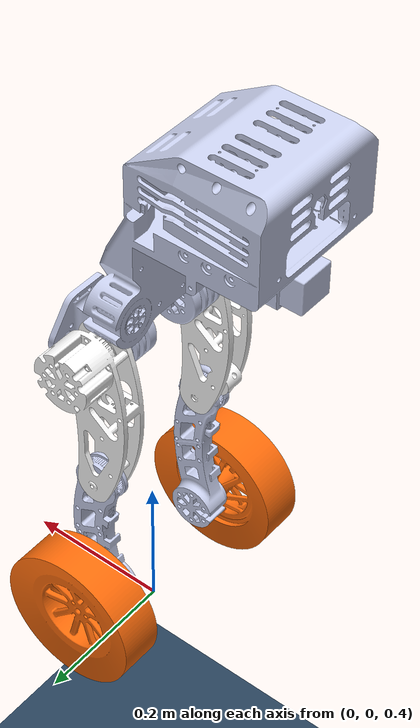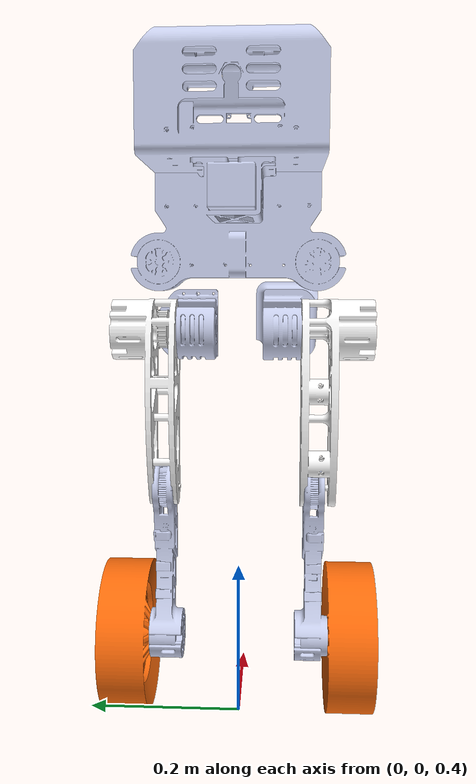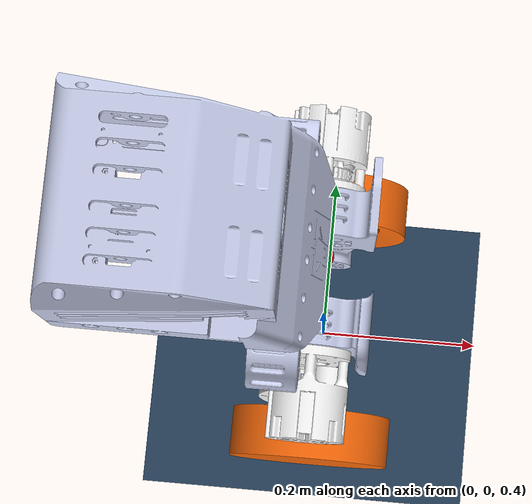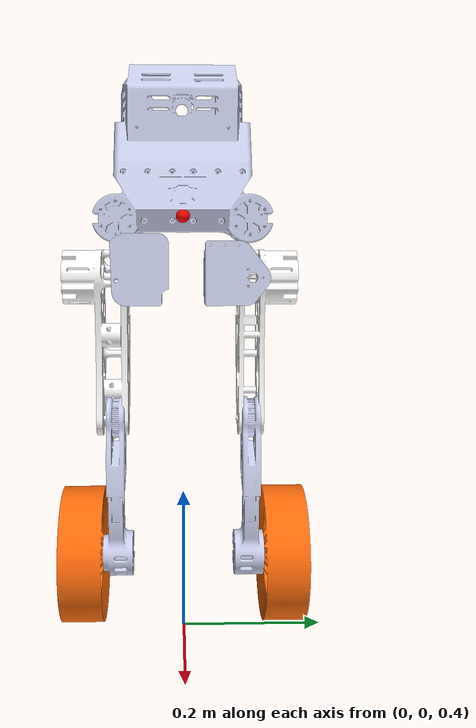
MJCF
<mujoco model="GOAT_Fixed">
    <compiler angle="radian" coordinate="local" meshdir="../meshes/" autolimits="true"/>

    <option timestep="0.005" gravity="0 0 -9.81" integrator="implicit" solver="Newton" iterations="32"/>

    <visual>
        <headlight diffuse="0.6 0.6 0.6" ambient="0.3 0.3 0.3" specular="0 0 0"/>
        <rgba haze="0.15 0.25 0.35 1"/>
        <global azimuth="120" elevation="-20"/>
    </visual>

    <asset>
        <texture  name="groundplane" type="2d" builtin="checker" mark="edge" rgb1="0.2 0.3 0.4" rgb2="0.1 0.2 0.3" markrgb="0.8 0.8 0.8" width="512" height="512"/>
        <material name="groundplane" texture="groundplane" texuniform="true" texrepeat="5 5" reflectance="0.2"/>
    </asset>

    <worldbody>
        <light directional="true" diffuse=".8 .8 .8" specular=".2 .2 .2" pos="0 0 5" dir="0 0 -1"/>
        <geom name="floor" type="plane" size="0 0 1" material="groundplane"/>
    </worldbody>

    <asset>
        <mesh name="base_Link" file="base_Link_simple.stl"/>
        <mesh name="hip_L_Link" file="hip_L_Link.stl"/>
        <mesh name="hip_R_Link" file="hip_R_Link.stl"/>
        <mesh name="thigh_L_Link" file="thigh_L_Link.stl"/>
        <mesh name="thigh_R_Link" file="thigh_R_Link.stl"/>
        <mesh name="calf_L_Link" file="calf_L_Link.stl"/>
        <mesh name="calf_R_Link" file="calf_R_Link.stl"/>
        <mesh name="wheel_L_Link" file="BF_wheel_L_Link.stl"/>
        <mesh name="wheel_R_Link" file="BF_wheel_R_Link.stl"/>

        <material name="orange" rgba="1.0 0.423 0.039 1.0"/>
        <material name="black" rgba="0.792 0.819 0.933 1.0"/>
        <material name="white" rgba="1.0 1.0 1.0 1.0"/>
    </asset>

    <default>
        <joint damping="0.0" frictionloss="0.0"/>
        <geom contype="1" conaffinity="1" friction="0.65 0.1 0.1"/>
        <motor ctrllimited="true"/>
    </default>

     <worldbody>
        <body name="base_Link" pos="0 0 1.0">
            <!-- Fixed base -->
            <site name="imu_site" pos="0 0 0" size="0.01" type="sphere" rgba="1 0 0 1"/>

            <inertial pos="0 0 0" mass="3.153308" fullinertia="0.021860000 0.025170000 0.023520000 -0.000011699458 0.006702000 0.000004493943"/>
            <geom type="mesh" mesh="base_Link" material="black" pos="-0.112941 0 0.084350" contype="0" conaffinity="0" group="1"/>
            <geom type="box" size="0.107 0.100 0.095" pos="-0.011 0 0.056" group="3"/>
            <geom type="box" size="0.035 0.125 0.040" pos="0.07 0 -0.078" group="3"/>

            <body name="hip_L_Link" pos="0.049579 0.096336 -0.087088">
                <joint name="hip_L_Joint" type="hinge" axis="-1 0 0" range="-1.7453 1.0123" damping="0.0" frictionloss="0.0" armature="0.001"/>
                <inertial pos="-0.043122 -0.038397 0.000190" mass="0.319" fullinertia="0.000146600 0.000204200 0.000181800 -0.000011403300 -0.000006278833 -0.000000904927"/>
                <geom type="mesh" mesh="hip_L_Link" material="black" contype="0" conaffinity="0" group="1"/>
                <geom type="cylinder" size="0.042 0.0675" pos="-0.0535 0 0" euler="1.57 0 0" group="3"/>

                <body name="thigh_L_Link" pos="-0.054 -0.017 0">
                    <joint name="thigh_L_Joint" type="hinge" axis="0 1 0" range="-0.3840 2.0071" damping="0.0" frictionloss="0.0" armature="0.001"/>
                    <inertial pos="-0.002015 0.042352 -0.035272" mass="0.483216" fullinertia="0.002425000 0.002342000 0.000385000 -0.000020797926 -0.000075779875 -0.000378300"/>
                    <geom type="mesh" mesh="thigh_L_Link" material="white" contype="0" conaffinity="0" group="1"/>
                    <geom type="box" size="0.045 0.025 0.0725" pos="-0.011 0.016 -0.116" group="3"/>

                    <body name="calf_L_Link" pos="0 0.018 -0.205">
                        <joint name="knee_L_Joint" type="hinge" axis="0 -1 0" range="-0.523599 2.3387" damping="0.0" frictionloss="0.0" armature="0.001"/>
                        <inertial pos="0.001969 0.000712 -0.160161" mass="0.303" fullinertia="0.001598000 0.001638000 0.000095365219 0.000000705710 -0.000031199137 0.000006440235"/>
                        <geom type="mesh" mesh="calf_L_Link" material="black" contype="0" conaffinity="0" group="1"/>
                        <geom type="cylinder" size="0.0325 0.1165" pos="0 0 -0.116" group="3"/>

                        <body name="wheel_L_Link" pos="0 0.016555 -0.200">
                            <joint name="wheel_L_Joint" type="hinge" axis="0 1 0" damping="0.0" frictionloss="0.0" armature="0.001"/>
                            <inertial pos="0 0.030660 0" mass="0.985" fullinertia="0.003366000 0.006306000 0.003366000 0 0 0"/>
                            <geom type="mesh" mesh="wheel_L_Link" material="orange" contype="0" conaffinity="0" group="1"/>
                            <geom name="wheel_L_collision" type="cylinder" size="0.1 0.025" pos="0 0.03 0" euler="1.5707963267948966 0 0" group="3"/>
                        </body>
                    </body>
                </body>
            </body>

            <body name="hip_R_Link" pos="0.049579 -0.096336 -0.087088">
                <joint name="hip_R_Joint" type="hinge" axis="-1 0 0" range="-1.0123 1.7453" damping="0.0" frictionloss="0.0" armature="0.001"/>
                <inertial pos="-0.043122 0.038397 0.000190" mass="0.319" fullinertia="0.000146600 0.000204200 0.000181800 0.000011403300 -0.000006278833 0.000000904927"/>
                <geom type="mesh" mesh="hip_R_Link" material="black" contype="0" conaffinity="0" group="1"/>
                <geom type="cylinder" size="0.042 0.0675" pos="-0.0535 0 0" euler="1.57 0 0" group="3"/>

                <body name="thigh_R_Link" pos="-0.054 0.017 0">
                    <joint name="thigh_R_Joint" type="hinge" axis="0 -1 0" range="-2.0071 0.3840" damping="0.0" frictionloss="0.0" armature="0.001"/>
                    <inertial pos="-0.002015 -0.042352 -0.035272" mass="0.483216" fullinertia="0.002425000 0.002342000 0.000385000 0.000020797926 -0.000075779875 0.000378300"/>
                    <geom type="mesh" mesh="thigh_R_Link" material="white" contype="0" conaffinity="0" group="1"/>
                    <geom type="box" size="0.045 0.025 0.0725" pos="-0.011 -0.016 -0.116" group="3"/>

                    <body name="calf_R_Link" pos="0 -0.018 -0.205">
                        <joint name="knee_R_Joint" type="hinge" axis="0 1 0" range="-2.3387 0.523599" damping="0.0" frictionloss="0.0" armature="0.001"/>
                        <inertial pos="0.001969 -0.000712 -0.160161" mass="0.303" fullinertia="0.001598000 0.001638000 0.000095365219 -0.000000705710 -0.000031199137 -0.000006440235"/>
                        <geom type="mesh" mesh="calf_R_Link" material="black" contype="0" conaffinity="0" group="1"/>
                        <geom type="cylinder" size="0.0325 0.1165" pos="0 0 -0.116" group="3"/>

                        <body name="wheel_R_Link" pos="0 -0.016555 -0.200">
                            <joint name="wheel_R_Joint" type="hinge" axis="0 -1 0" damping="0.0" frictionloss="0.0" armature="0.001"/>
                            <inertial pos="0 -0.030660 0" mass="0.985" fullinertia="0.003366000 0.006306000 0.003366000 0 0 0"/>
                            <geom type="mesh" mesh="wheel_R_Link" material="orange" contype="0" conaffinity="0" group="1"/>
                            <geom name="wheel_R_collision" type="cylinder" size="0.1 0.025" pos="0 -0.03 0" euler="1.5707963267948966 0 0" group="3"/>
                        </body>
                    </body>
                </body>
            </body>
        </body>
    </worldbody>

    <!-- Wheel-ground friction controlled explicitly via contact pairs. -->
    <contact>
        <exclude body1="base_Link"    body2="hip_L_Link"/>
        <exclude body1="base_Link"    body2="hip_R_Link"/>
        <exclude body1="base_Link"    body2="thigh_L_Link"/>
        <exclude body1="base_Link"    body2="thigh_R_Link"/>
        <exclude body1="base_Link"    body2="calf_L_Link"/>
        <exclude body1="base_Link"    body2="calf_R_Link"/>
        <exclude body1="base_Link"    body2="wheel_L_Link"/>
        <exclude body1="base_Link"    body2="wheel_R_Link"/>
        <exclude body1="hip_L_Link"   body2="hip_R_Link"/>
        <exclude body1="hip_L_Link"   body2="thigh_R_Link"/>
        <exclude body1="hip_L_Link"   body2="calf_L_Link"/>
        <exclude body1="hip_L_Link"   body2="calf_R_Link"/>
        <exclude body1="hip_L_Link"   body2="wheel_L_Link"/>
        <exclude body1="hip_L_Link"   body2="wheel_R_Link"/>
        <exclude body1="hip_R_Link"   body2="thigh_L_Link"/>
        <exclude body1="hip_R_Link"   body2="calf_L_Link"/>
        <exclude body1="hip_R_Link"   body2="calf_R_Link"/>
        <exclude body1="hip_R_Link"   body2="wheel_L_Link"/>
        <exclude body1="hip_R_Link"   body2="wheel_R_Link"/>
        <exclude body1="thigh_L_Link" body2="thigh_R_Link"/>
        <exclude body1="thigh_L_Link" body2="calf_R_Link"/>
        <exclude body1="thigh_L_Link" body2="wheel_L_Link"/>
        <exclude body1="thigh_L_Link" body2="wheel_R_Link"/>
        <exclude body1="thigh_R_Link" body2="calf_L_Link"/>
        <exclude body1="thigh_R_Link" body2="wheel_L_Link"/>
        <exclude body1="thigh_R_Link" body2="wheel_R_Link"/>
        <exclude body1="calf_L_Link"  body2="calf_R_Link"/>
        <exclude body1="calf_L_Link"  body2="wheel_R_Link"/>
        <exclude body1="calf_R_Link"  body2="wheel_L_Link"/>
        <exclude body1="wheel_L_Link" body2="wheel_R_Link"/>
    </contact>

    <contact>
        <pair name="floor_wheel_L"
            geom1="floor"
            geom2="wheel_L_collision"
            condim="3"
            friction="1.0 1.0 0.0 0.0 0.0"
            solref="0.02 1.0"
            solimp="0.9 0.95 0.001 0.5 2"/>

        <pair name="floor_wheel_R"
            geom1="floor"
            geom2="wheel_R_collision"
            condim="3"
            friction="1.0 1.0 0.0 0.0 0.0"
            solref="0.02 1.0"
            solimp="0.9 0.95 0.001 0.5 2"/>
    </contact>

    <actuator>
        <motor name="hip_L_Joint"   joint="hip_L_Joint"   ctrllimited="true" ctrlrange="-4.5 4.5"  forcelimited="true" forcerange="-4.5 4.5"/>
        <motor name="thigh_L_Joint" joint="thigh_L_Joint" ctrllimited="true" ctrlrange="-4.5 4.5"  forcelimited="true" forcerange="-4.5 4.5"/>
        <motor name="knee_L_Joint"  joint="knee_L_Joint"  ctrllimited="true" ctrlrange="-9.0 9.0"  forcelimited="true" forcerange="-9.0 9.0"/>
        <motor name="wheel_L_Joint" joint="wheel_L_Joint" ctrllimited="true" ctrlrange="-2.5 2.5"  forcelimited="true" forcerange="-2.5 2.5"/>
        <motor name="hip_R_Joint"   joint="hip_R_Joint"   ctrllimited="true" ctrlrange="-4.5 4.5"  forcelimited="true" forcerange="-4.5 4.5"/>
        <motor name="thigh_R_Joint" joint="thigh_R_Joint" ctrllimited="true" ctrlrange="-4.5 4.5"  forcelimited="true" forcerange="-4.5 4.5"/>
        <motor name="knee_R_Joint"  joint="knee_R_Joint"  ctrllimited="true" ctrlrange="-9.0 9.0"  forcelimited="true" forcerange="-9.0 9.0"/>
        <motor name="wheel_R_Joint" joint="wheel_R_Joint" ctrllimited="true" ctrlrange="-2.5 2.5"  forcelimited="true" forcerange="-2.5 2.5"/>
    </actuator>

    <keyframe>
        <!-- ctrl is torque, so the home pose starts from zero torque. (It used to
             repeat qpos, which injected a constant bias torque on every reset.) -->
        <key name="home"
            qpos="0 1.0942 1.8852 0   0 -1.0942 -1.8852 0"
            qvel="0 0 0 0             0 0 0 0"
            ctrl="0 0 0 0             0 0 0 0"/>
    </keyframe>

    <sensor>
        <accelerometer name="imu_acc" site="imu_site"/>
        <gyro name="imu_gyro" site="imu_site"/>
        <magnetometer name="imu_mag" site="imu_site"/>
    </sensor>

</mujoco>
